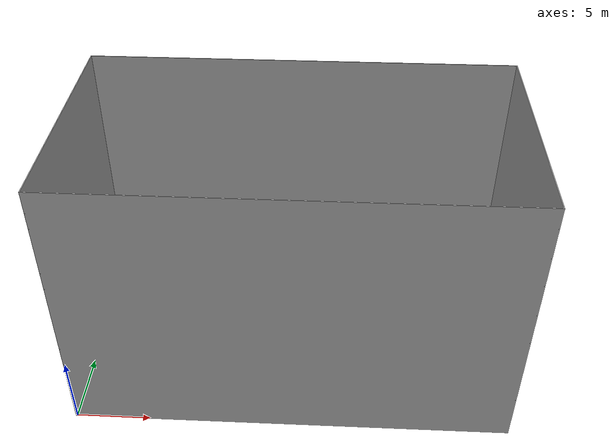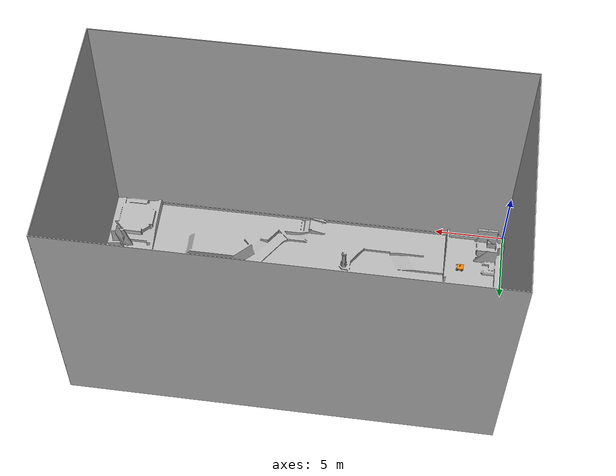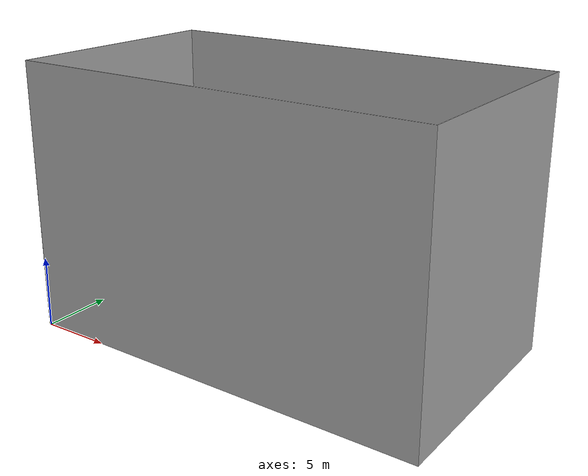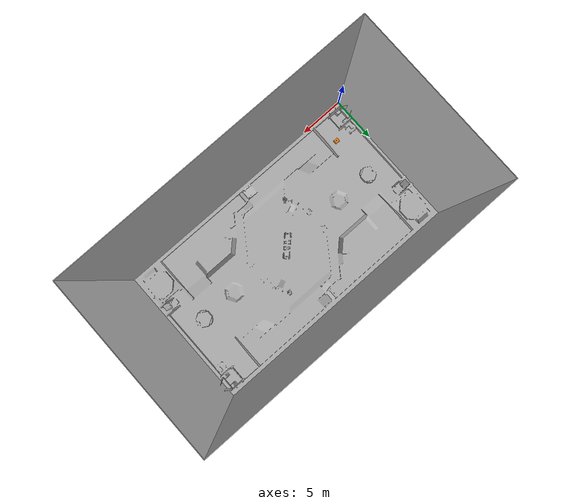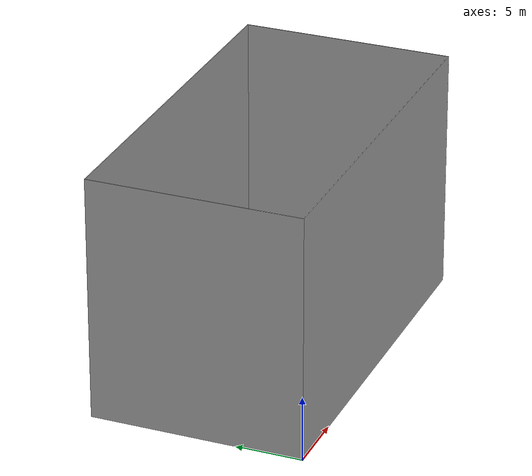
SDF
<?xml version='1.0' encoding='utf-8'?>
<sdf version="1.8">
  <world name="rmuc_2025">
    <physics name="navigation" type="ignored">
      <max_step_size>0.004</max_step_size>
      <real_time_factor>1.0</real_time_factor>
    </physics>
    <gravity>0 0 -9.81</gravity>
    <plugin filename="ignition-gazebo-physics-system" name="ignition::gazebo::systems::Physics" />
    <plugin filename="ignition-gazebo-user-commands-system" name="ignition::gazebo::systems::UserCommands" />
    <plugin filename="ignition-gazebo-scene-broadcaster-system" name="ignition::gazebo::systems::SceneBroadcaster" />
    <plugin filename="ignition-gazebo-sensors-system" name="ignition::gazebo::systems::Sensors">
      <render_engine>ogre2</render_engine>
    </plugin>
    <scene>
      <ambient>0.65 0.65 0.65 1</ambient>
      <background>0.16 0.19 0.24 1</background>
      <shadows>false</shadows>
    </scene>
    <light name="sun" type="directional">
      <pose>0 0 12 0 0 0</pose>
      <diffuse>0.8 0.8 0.8 1</diffuse>
      <direction>-0.4 0.2 -0.9</direction>
      <cast_shadows>false</cast_shadows>
    </light>
    <model name="omni_robot">
      <pose>3 3 0.15 0 0 0</pose>
      <link name="base_link">
        <gravity>false</gravity>
        <inertial>
          <mass>15</mass>
          <inertia>
            <ixx>0.27</ixx>
            <iyy>0.38</iyy>
            <izz>0.56</izz>
          </inertia>
        </inertial>
        <collision name="body_collision">
          <pose>0 0 0 0 0 0</pose>
          <geometry>
            <box>
              <size>0.52 0.42 0.18</size>
            </box>
          </geometry>
          <surface>
            <friction>
              <ode>
                <mu>0.0</mu>
                <mu2>0.0</mu2>
              </ode>
            </friction>
          </surface>
        </collision>
        <visual name="body">
          <pose>0 0 0 0 0 0</pose>
          <geometry>
            <box>
              <size>0.52 0.42 0.18</size>
            </box>
          </geometry>
          <material>
            <ambient>1 0.52 0.03 1</ambient>
            <diffuse>1 0.52 0.03 1</diffuse>
          </material>
        </visual>
        <visual name="front">
          <pose>0.22 0 0.105 0 0 0</pose>
          <geometry>
            <box>
              <size>0.07 0.28 0.025</size>
            </box>
          </geometry>
          <material>
            <ambient>0.95 0.98 1 1</ambient>
            <diffuse>0.95 0.98 1 1</diffuse>
          </material>
        </visual>
        <visual name="wheel_-0.17_-0.22">
          <pose>-0.17 -0.22 -0.055 1.5707963 0 0</pose>
          <geometry>
            <cylinder>
              <radius>0.085</radius>
              <length>0.045</length>
            </cylinder>
          </geometry>
          <material>
            <ambient>0.05 0.06 0.07 1</ambient>
            <diffuse>0.05 0.06 0.07 1</diffuse>
          </material>
        </visual>
        <visual name="wheel_-0.17_0.22">
          <pose>-0.17 0.22 -0.055 1.5707963 0 0</pose>
          <geometry>
            <cylinder>
              <radius>0.085</radius>
              <length>0.045</length>
            </cylinder>
          </geometry>
          <material>
            <ambient>0.05 0.06 0.07 1</ambient>
            <diffuse>0.05 0.06 0.07 1</diffuse>
          </material>
        </visual>
        <visual name="wheel_0.17_-0.22">
          <pose>0.17 -0.22 -0.055 1.5707963 0 0</pose>
          <geometry>
            <cylinder>
              <radius>0.085</radius>
              <length>0.045</length>
            </cylinder>
          </geometry>
          <material>
            <ambient>0.05 0.06 0.07 1</ambient>
            <diffuse>0.05 0.06 0.07 1</diffuse>
          </material>
        </visual>
        <visual name="wheel_0.17_0.22">
          <pose>0.17 0.22 -0.055 1.5707963 0 0</pose>
          <geometry>
            <cylinder>
              <radius>0.085</radius>
              <length>0.045</length>
            </cylinder>
          </geometry>
          <material>
            <ambient>0.05 0.06 0.07 1</ambient>
            <diffuse>0.05 0.06 0.07 1</diffuse>
          </material>
        </visual>
        <visual name="lidar_housing">
          <pose>0 0 0.19 0 0 0</pose>
          <geometry>
            <box>
              <size>0.07 0.07 0.08</size>
            </box>
          </geometry>
          <material>
            <ambient>0.08 0.1 0.12 1</ambient>
            <diffuse>0.08 0.1 0.12 1</diffuse>
          </material>
        </visual>
        <sensor name="lidar" type="gpu_lidar">
          <pose>0 0 0.25 0 0 0</pose>
          <topic>/scan</topic>
          <update_rate>10</update_rate>
          <always_on>true</always_on>
          <visualize>false</visualize>
          <lidar>
            <scan>
              <horizontal>
                <samples>360</samples>
                <resolution>1</resolution>
                <min_angle>-3.141592653589793</min_angle>
                <max_angle>3.141592653589793</max_angle>
              </horizontal>
            </scan>
            <range>
              <min>0.08</min>
              <max>16</max>
              <resolution>0.01</resolution>
            </range>
            <noise type="gaussian">
              <mean>0</mean>
              <stddev>0.01</stddev>
            </noise>
          </lidar>
        </sensor>
      </link>
      <plugin filename="ignition-gazebo-velocity-control-system" name="ignition::gazebo::systems::VelocityControl">
        <topic>/model/omni_robot/cmd_vel</topic>
      </plugin>
      <plugin filename="ignition-gazebo-odometry-publisher-system" name="ignition::gazebo::systems::OdometryPublisher">
        <odom_frame>odom</odom_frame>
        <robot_base_frame>base_link</robot_base_frame>
        <odom_publish_frequency>50</odom_publish_frequency>
        <odom_topic>/gazebo/odometry</odom_topic>
        <dimensions>2</dimensions>
      </plugin>
    </model>
    <include>
      <uri>model://rmuc_2025</uri>
      <name>rmuc_2025_arena</name>
    </include>
  </world>
</sdf>

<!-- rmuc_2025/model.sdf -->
<sdf version="1.6">
  <model name="rmuc_2025">
    <static>true</static>
    <link name="body">
      <pose frame="">14.5 8 0.2 0 0 0</pose>
      <self_collide>0</self_collide>
      <kinematic>0</kinematic>
      <gravity>1</gravity>
      <visual name="visual">
        <geometry>
          <mesh>
            <uri>model://rmuc_2025/meshes/rmuc_2025.stl</uri>
            <scale>1 1 1</scale>
          </mesh>
        </geometry>
        <material>
          <ambient>0.3 0.3 0.3 1</ambient>
          <diffuse>0.7 0.7 0.7 1</diffuse>
          <specular>0.01 0.01 0.01 1</specular>
        </material>
      </visual>
      <collision name="collision">
        <geometry>
          <mesh>
            <uri>model://rmuc_2025/meshes/rmuc_2025_obstacles_collision.stl</uri>
            <scale>1 1 1</scale>
          </mesh>
        </geometry>
      </collision>
    </link>
  </model>
</sdf>
